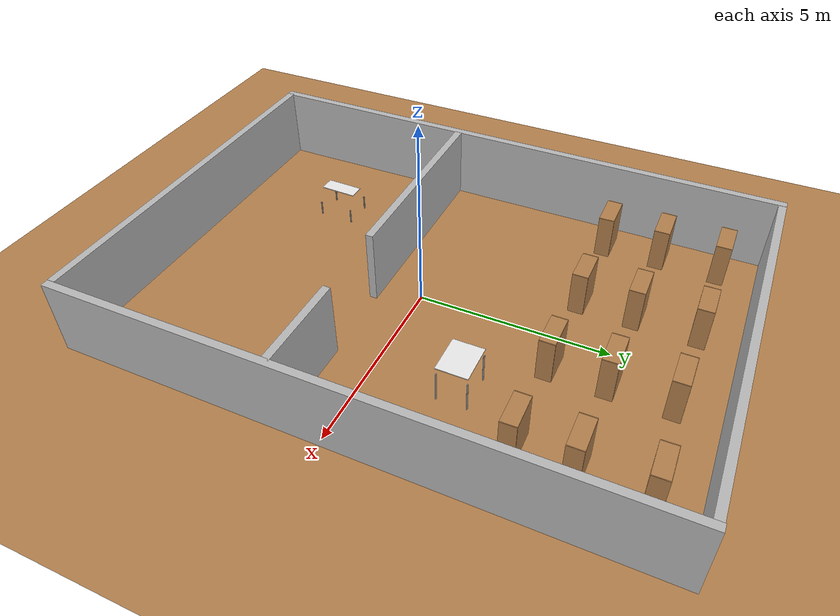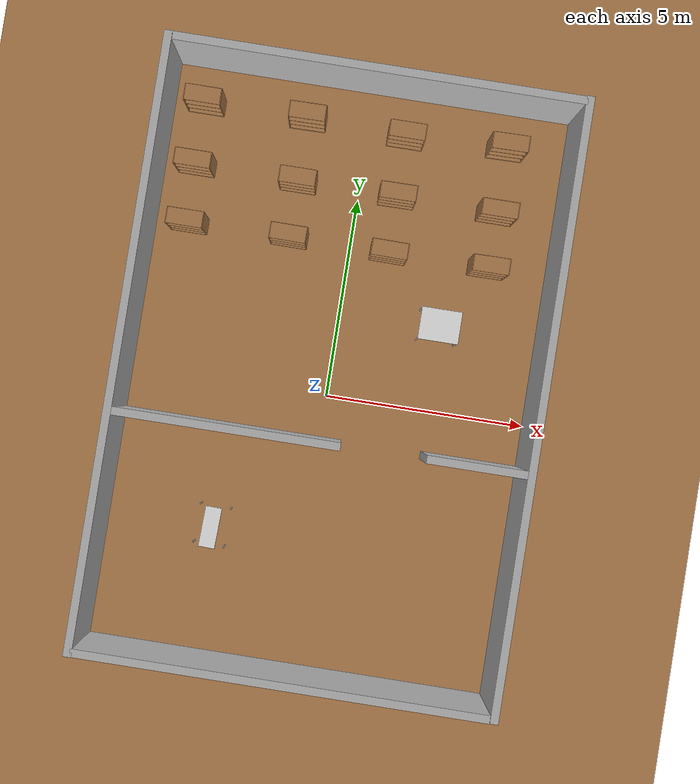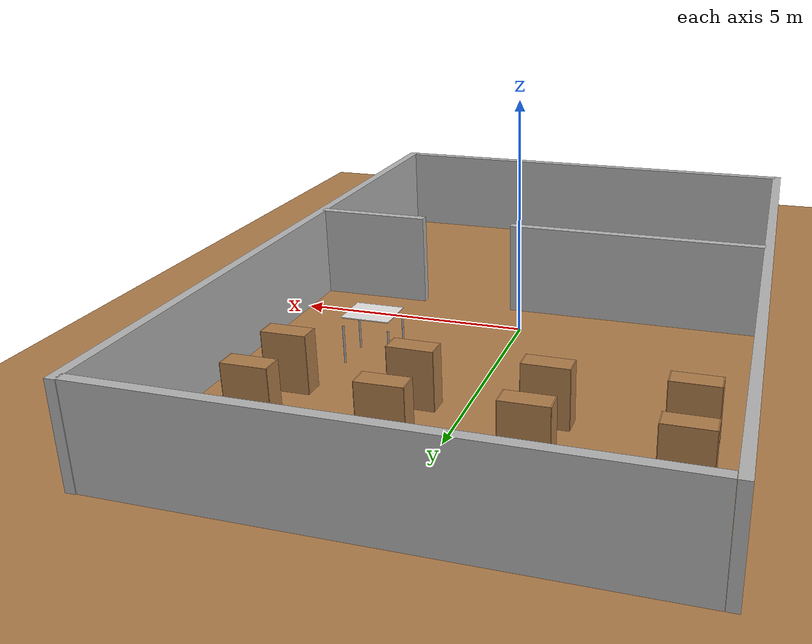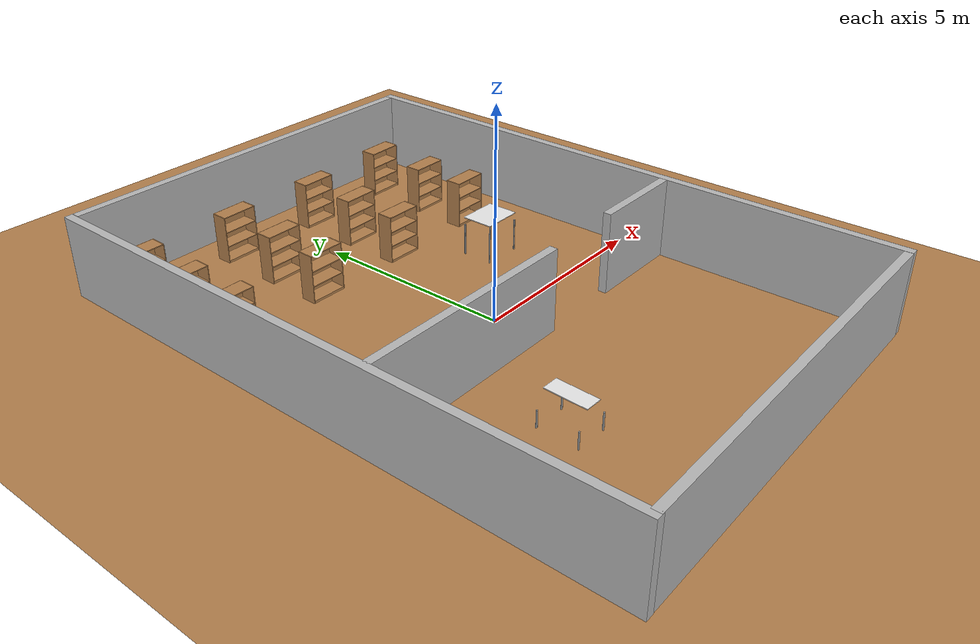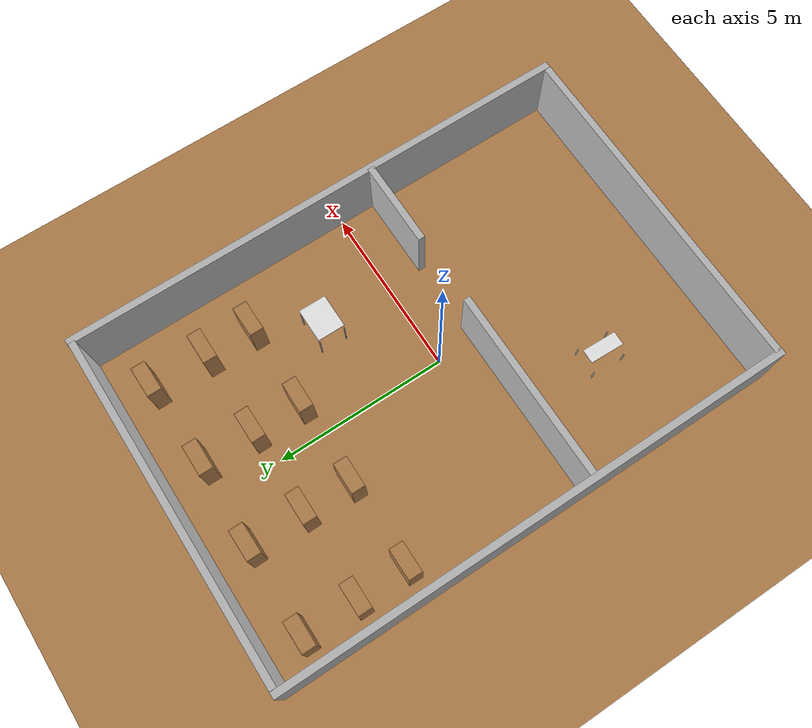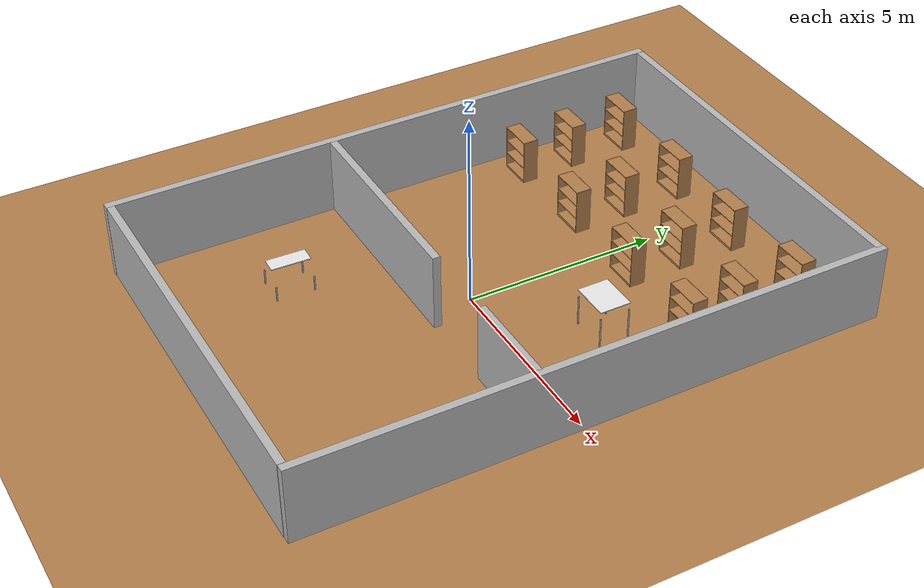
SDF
<sdf version="1.6">
 <world name="default">
  <physics name="default_physics" default="0" type="ode">
   <ode>
    <solver>
     <type>quick</type>
     <iters>20</iters>
     <sor>1</sor>
     <use_dynamic_moi_rescaling>0</use_dynamic_moi_rescaling>
    </solver>
    <constraints>
     <cfm>0</cfm>
     <erp>0.2</erp>
     <contact_max_correcting_vel>100</contact_max_correcting_vel>
     <contact_surface_layer>0</contact_surface_layer>
    </constraints>
   </ode>
   <real_time_update_rate>1000</real_time_update_rate>
   <max_step_size>0.001</max_step_size>
   <real_time_factor>1</real_time_factor>
  </physics>
  <light name="light1" type="directional">
   <pose>-2 0 4 0 -0 0</pose>
   <diffuse>1 1 1 1</diffuse>
   <specular>0.1 0.1 0.1 1</specular>
   <attenuation>
    <range>20</range>
    <constant>0.9</constant>
    <linear>0.01</linear>
    <quadratic>0.001</quadratic>
   </attenuation>
   <direction>0.2 0 -1</direction>
  </light>
  <model name="ground_plane">
   <static>1</static>
   <link name="link">
    <collision name="collision">
     <geometry><plane><normal>0 0 1</normal><size>100 100</size></plane></geometry>
     <surface><friction><ode><mu>100</mu><mu2>50</mu2></ode></friction></surface>
    </collision>
    <visual name="visual">
     <cast_shadows>0</cast_shadows>
     <geometry><plane><normal>0 0 1</normal><size>100 100</size></plane></geometry>
     <material>
      <script><uri>model://wrc_ground_plane/materials/wood.material</uri><name>WRS/WoodFloor</name></script>
     </material>
    </visual>
    <velocity_decay><linear>0</linear><angular>0</angular></velocity_decay>
   </link>
  </model>
  <model name="wall_1_model">
   <pose>-0.020359 -6.90816 1 0 -0 0</pose>
   <static>1</static>
   <link name="wall_1_body">
    <inertial>
     <mass>1</mass>
     <inertia><ixx>1</ixx><ixy>0</ixy><ixz>0</ixz><iyy>1</iyy><iyz>0</iyz><izz>1</izz></inertia>
    </inertial>
    <collision name="collision"><geometry><box><size>10 0.2 2</size></box></geometry></collision>
    <visual name="visual"><geometry><box><size>10 0.2 2</size></box></geometry></visual>
    <velocity_decay><linear>0</linear><angular>0</angular></velocity_decay>
   </link>
  </model>
  <model name="wall_2_model">
   <pose>0.037007 7.88611 1 0 -0 0</pose>
   <static>1</static>
   <link name="wall_2_body">
    <inertial>
     <mass>1</mass>
     <inertia><ixx>1</ixx><ixy>0</ixy><ixz>0</ixz><iyy>1</iyy><iyz>0</iyz><izz>1</izz></inertia>
    </inertial>
    <collision name="collision"><geometry><box><size>10 0.2 2</size></box></geometry></collision>
    <visual name="visual"><geometry><box><size>10 0.2 2</size></box></geometry></visual>
    <velocity_decay><linear>0</linear><angular>0</angular></velocity_decay>
   </link>
  </model>
  <model name="wall_3_model">
   <pose>-5.06937 0.485763 1 0 -0 0</pose>
   <static>1</static>
   <link name="wall_3_body">
    <inertial>
     <mass>1</mass>
     <inertia><ixx>1</ixx><ixy>0</ixy><ixz>0</ixz><iyy>1</iyy><iyz>0</iyz><izz>1</izz></inertia>
    </inertial>
    <collision name="collision"><geometry><box><size>0.2 15 2</size></box></geometry></collision>
    <visual name="visual"><geometry><box><size>0.2 15 2</size></box></geometry></visual>
    <velocity_decay><linear>0</linear><angular>0</angular></velocity_decay>
   </link>
  </model>
  <model name="wall_4_model">
   <pose>5.08627 0.502372 1 0 -0 0</pose>
   <static>1</static>
   <link name="wall_4_body">
    <inertial>
     <mass>1</mass>
     <inertia><ixx>1</ixx><ixy>0</ixy><ixz>0</ixz><iyy>1</iyy><iyz>0</iyz><izz>1</izz></inertia>
    </inertial>
    <collision name="collision"><geometry><box><size>0.2 15 2</size></box></geometry></collision>
    <visual name="visual"><geometry><box><size>0.2 15 2</size></box></geometry></visual>
    <velocity_decay><linear>0</linear><angular>0</angular></velocity_decay>
   </link>
  </model>
  <model name="wall_5_model">
   <pose>-2.23745 -1.14076 1 0 -0 0</pose>
   <static>1</static>
   <link name="wall_5_body">
    <inertial>
     <mass>1</mass>
     <inertia><ixx>1</ixx><ixy>0</ixy><ixz>0</ixz><iyy>1</iyy><iyz>0</iyz><izz>1</izz></inertia>
    </inertial>
    <collision name="collision"><geometry><box><size>5.5 0.2 2</size></box></geometry></collision>
    <visual name="visual"><geometry><box><size>5.5 0.2 2</size></box></geometry></visual>
    <velocity_decay><linear>0</linear><angular>0</angular></velocity_decay>
   </link>
  </model>
  <model name="wall_6_model">
   <pose>3.81487 -1.10956 1 0 -0 0</pose>
   <static>1</static>
   <link name="wall_6_body">
    <inertial>
     <mass>1</mass>
     <inertia><ixx>1</ixx><ixy>0</ixy><ixz>0</ixz><iyy>1</iyy><iyz>0</iyz><izz>1</izz></inertia>
    </inertial>
    <collision name="collision"><geometry><box><size>2.5 0.2 2</size></box></geometry></collision>
    <visual name="visual"><geometry><box><size>2.5 0.2 2</size></box></geometry></visual>
    <velocity_decay><linear>0</linear><angular>0</angular></velocity_decay>
   </link>
  </model>
  <model name="table1">
   <static>1</static>
   <link name="link">
    <collision name="surface">
     <pose>0 0 0.99 0 -0 0</pose>
     <geometry><box><size>1 0.4 0.02</size></box></geometry>
    </collision>
    <visual name="visual1">
     <pose>0 0 0.99 0 -0 0</pose>
     <geometry><box><size>1 0.4 0.02</size></box></geometry>
     <material>
      <script><uri>file://media/materials/scripts/gazebo.material</uri><name>Gazebo/White</name></script>
     </material>
    </visual>
    <collision name="front_left_leg">
     <pose>0.48 0.38 0.4 0 -0 0</pose>
     <geometry><cylinder><radius>0.02</radius><length>0.4</length></cylinder></geometry>
    </collision>
    <visual name="front_left_leg">
     <pose>0.48 0.38 0.4 0 -0 0</pose>
     <geometry><cylinder><radius>0.02</radius><length>0.4</length></cylinder></geometry>
     <material>
      <script><uri>file://media/materials/scripts/gazebo.material</uri><name>Gazebo/Grey</name></script>
     </material>
    </visual>
    <collision name="front_right_leg">
     <pose>0.48 -0.38 0.4 0 -0 0</pose>
     <geometry><cylinder><radius>0.02</radius><length>0.4</length></cylinder></geometry>
    </collision>
    <visual name="front_right_leg">
     <pose>0.48 -0.38 0.4 0 -0 0</pose>
     <geometry><cylinder><radius>0.02</radius><length>0.4</length></cylinder></geometry>
     <material>
      <script><uri>file://media/materials/scripts/gazebo.material</uri><name>Gazebo/Grey</name></script>
     </material>
    </visual>
    <collision name="back_right_leg">
     <pose>-0.48 -0.38 0.4 0 -0 0</pose>
     <geometry><cylinder><radius>0.02</radius><length>0.4</length></cylinder></geometry>
    </collision>
    <visual name="back_right_leg">
     <pose>-0.48 -0.38 0.4 0 -0 0</pose>
     <geometry><cylinder><radius>0.02</radius><length>0.4</length></cylinder></geometry>
     <material>
      <script><uri>file://media/materials/scripts/gazebo.material</uri><name>Gazebo/Grey</name></script>
     </material>
    </visual>
    <collision name="back_left_leg">
     <pose>-0.48 0.38 0.4 0 -0 0</pose>
     <geometry><cylinder><radius>0.02</radius><length>0.4</length></cylinder></geometry>
    </collision>
    <visual name="back_left_leg">
     <pose>-0.48 0.38 0.4 0 -0 0</pose>
     <geometry><cylinder><radius>0.02</radius><length>0.4</length></cylinder></geometry>
     <material>
      <script><uri>file://media/materials/scripts/gazebo.material</uri><name>Gazebo/Grey</name></script>
     </material>
    </visual>
    <velocity_decay><linear>0</linear><angular>0</angular></velocity_decay>
   </link>
   <pose>-2.3094 -3.61673 0 0 0 -1.60531</pose>
  </model>
  <model name="bookshelf_0">
   <static>1</static>
   <link name="link">
    <inertial><mass>1</mass></inertial>
    <collision name="back">
     <pose>0 0.005 0.6 0 -0 0</pose>
     <geometry><box><size>0.9 0.01 1.2</size></box></geometry>
    </collision>
    <visual name="visual1">
     <pose>0 0.005 0.6 0 -0 0</pose>
     <geometry><box><size>0.9 0.01 1.2</size></box></geometry>
     <material>
      <script><uri>file://media/materials/scripts/gazebo.material</uri><name>Gazebo/Wood</name></script>
     </material>
    </visual>
    <collision name="left_side">
     <pose>0.45 -0.195 0.6 0 -0 0</pose>
     <geometry><box><size>0.02 0.4 1.2</size></box></geometry>
    </collision>
    <visual name="visual2">
     <pose>0.45 -0.195 0.6 0 -0 0</pose>
     <geometry><box><size>0.02 0.4 1.2</size></box></geometry>
     <material>
      <script><uri>file://media/materials/scripts/gazebo.material</uri><name>Gazebo/Wood</name></script>
     </material>
    </visual>
    <collision name="right_side">
     <pose>-0.45 -0.195 0.6 0 -0 0</pose>
     <geometry><box><size>0.02 0.4 1.2</size></box></geometry>
    </collision>
    <visual name="visual3">
     <pose>-0.45 -0.195 0.6 0 -0 0</pose>
     <geometry><box><size>0.02 0.4 1.2</size></box></geometry>
     <material>
      <script><uri>file://media/materials/scripts/gazebo.material</uri><name>Gazebo/Wood</name></script>
     </material>
    </visual>
    <collision name="bottom">
     <pose>0 -0.195 0.03 0 -0 0</pose>
     <geometry><box><size>0.88 0.4 0.06</size></box></geometry>
    </collision>
    <visual name="visual4">
     <pose>0 -0.195 0.03 0 -0 0</pose>
     <geometry><box><size>0.88 0.4 0.06</size></box></geometry>
     <material>
      <script><uri>file://media/materials/scripts/gazebo.material</uri><name>Gazebo/Wood</name></script>
     </material>
    </visual>
    <collision name="top">
     <pose>0 -0.195 1.19 0 -0 0</pose>
     <geometry><box><size>0.88 0.4 0.02</size></box></geometry>
    </collision>
    <visual name="visual5">
     <pose>0 -0.195 1.19 0 -0 0</pose>
     <geometry><box><size>0.88 0.4 0.02</size></box></geometry>
     <material>
      <script><uri>file://media/materials/scripts/gazebo.material</uri><name>Gazebo/Wood</name></script>
     </material>
    </visual>
    <collision name="low_shelf">
     <pose>0 -0.195 0.43 0 -0 0</pose>
     <geometry><box><size>0.88 0.4 0.02</size></box></geometry>
    </collision>
    <visual name="visual6">
     <pose>0 -0.195 0.43 0 -0 0</pose>
     <geometry><box><size>0.88 0.4 0.02</size></box></geometry>
     <material>
      <script><uri>file://media/materials/scripts/gazebo.material</uri><name>Gazebo/Wood</name></script>
     </material>
    </visual>
    <collision name="high_shelf">
     <pose>0 -0.195 0.8 0 -0 0</pose>
     <geometry><box><size>0.88 0.4 0.02</size></box></geometry>
    </collision>
    <visual name="visual7">
     <pose>0 -0.195 0.8 0 -0 0</pose>
     <geometry><box><size>0.88 0.4 0.02</size></box></geometry>
     <material>
      <script><uri>file://media/materials/scripts/gazebo.material</uri><name>Gazebo/Wood</name></script>
     </material>
    </visual>
   </link>
   <pose>-1.55436 6.99944 0 0 -0 0.01062</pose>
  </model>
  <model name="bookshelf_1">
   <static>1</static>
   <link name="link">
    <inertial><mass>1</mass></inertial>
    <collision name="back">
     <pose>0 0.005 0.6 0 -0 0</pose>
     <geometry><box><size>0.9 0.01 1.2</size></box></geometry>
    </collision>
    <visual name="visual1">
     <pose>0 0.005 0.6 0 -0 0</pose>
     <geometry><box><size>0.9 0.01 1.2</size></box></geometry>
     <material>
      <script><uri>file://media/materials/scripts/gazebo.material</uri><name>Gazebo/Wood</name></script>
     </material>
    </visual>
    <collision name="left_side">
     <pose>0.45 -0.195 0.6 0 -0 0</pose>
     <geometry><box><size>0.02 0.4 1.2</size></box></geometry>
    </collision>
    <visual name="visual2">
     <pose>0.45 -0.195 0.6 0 -0 0</pose>
     <geometry><box><size>0.02 0.4 1.2</size></box></geometry>
     <material>
      <script><uri>file://media/materials/scripts/gazebo.material</uri><name>Gazebo/Wood</name></script>
     </material>
    </visual>
    <collision name="right_side">
     <pose>-0.45 -0.195 0.6 0 -0 0</pose>
     <geometry><box><size>0.02 0.4 1.2</size></box></geometry>
    </collision>
    <visual name="visual3">
     <pose>-0.45 -0.195 0.6 0 -0 0</pose>
     <geometry><box><size>0.02 0.4 1.2</size></box></geometry>
     <material>
      <script><uri>file://media/materials/scripts/gazebo.material</uri><name>Gazebo/Wood</name></script>
     </material>
    </visual>
    <collision name="bottom">
     <pose>0 -0.195 0.03 0 -0 0</pose>
     <geometry><box><size>0.88 0.4 0.06</size></box></geometry>
    </collision>
    <visual name="visual4">
     <pose>0 -0.195 0.03 0 -0 0</pose>
     <geometry><box><size>0.88 0.4 0.06</size></box></geometry>
     <material>
      <script><uri>file://media/materials/scripts/gazebo.material</uri><name>Gazebo/Wood</name></script>
     </material>
    </visual>
    <collision name="top">
     <pose>0 -0.195 1.19 0 -0 0</pose>
     <geometry><box><size>0.88 0.4 0.02</size></box></geometry>
    </collision>
    <visual name="visual5">
     <pose>0 -0.195 1.19 0 -0 0</pose>
     <geometry><box><size>0.88 0.4 0.02</size></box></geometry>
     <material>
      <script><uri>file://media/materials/scripts/gazebo.material</uri><name>Gazebo/Wood</name></script>
     </material>
    </visual>
    <collision name="low_shelf">
     <pose>0 -0.195 0.43 0 -0 0</pose>
     <geometry><box><size>0.88 0.4 0.02</size></box></geometry>
    </collision>
    <visual name="visual6">
     <pose>0 -0.195 0.43 0 -0 0</pose>
     <geometry><box><size>0.88 0.4 0.02</size></box></geometry>
     <material>
      <script><uri>file://media/materials/scripts/gazebo.material</uri><name>Gazebo/Wood</name></script>
     </material>
    </visual>
    <collision name="high_shelf">
     <pose>0 -0.195 0.8 0 -0 0</pose>
     <geometry><box><size>0.88 0.4 0.02</size></box></geometry>
    </collision>
    <visual name="visual7">
     <pose>0 -0.195 0.8 0 -0 0</pose>
     <geometry><box><size>0.88 0.4 0.02</size></box></geometry>
     <material>
      <script><uri>file://media/materials/scripts/gazebo.material</uri><name>Gazebo/Wood</name></script>
     </material>
    </visual>
   </link>
   <pose>-1.54553 5.39127 0 0 -0 0.001446</pose>
  </model>
  <model name="bookshelf_2">
   <static>1</static>
   <link name="link">
    <inertial><mass>1</mass></inertial>
    <collision name="back">
     <pose>0 0.005 0.6 0 -0 0</pose>
     <geometry><box><size>0.9 0.01 1.2</size></box></geometry>
    </collision>
    <visual name="visual1">
     <pose>0 0.005 0.6 0 -0 0</pose>
     <geometry><box><size>0.9 0.01 1.2</size></box></geometry>
     <material>
      <script><uri>file://media/materials/scripts/gazebo.material</uri><name>Gazebo/Wood</name></script>
     </material>
    </visual>
    <collision name="left_side">
     <pose>0.45 -0.195 0.6 0 -0 0</pose>
     <geometry><box><size>0.02 0.4 1.2</size></box></geometry>
    </collision>
    <visual name="visual2">
     <pose>0.45 -0.195 0.6 0 -0 0</pose>
     <geometry><box><size>0.02 0.4 1.2</size></box></geometry>
     <material>
      <script><uri>file://media/materials/scripts/gazebo.material</uri><name>Gazebo/Wood</name></script>
     </material>
    </visual>
    <collision name="right_side">
     <pose>-0.45 -0.195 0.6 0 -0 0</pose>
     <geometry><box><size>0.02 0.4 1.2</size></box></geometry>
    </collision>
    <visual name="visual3">
     <pose>-0.45 -0.195 0.6 0 -0 0</pose>
     <geometry><box><size>0.02 0.4 1.2</size></box></geometry>
     <material>
      <script><uri>file://media/materials/scripts/gazebo.material</uri><name>Gazebo/Wood</name></script>
     </material>
    </visual>
    <collision name="bottom">
     <pose>0 -0.195 0.03 0 -0 0</pose>
     <geometry><box><size>0.88 0.4 0.06</size></box></geometry>
    </collision>
    <visual name="visual4">
     <pose>0 -0.195 0.03 0 -0 0</pose>
     <geometry><box><size>0.88 0.4 0.06</size></box></geometry>
     <material>
      <script><uri>file://media/materials/scripts/gazebo.material</uri><name>Gazebo/Wood</name></script>
     </material>
    </visual>
    <collision name="top">
     <pose>0 -0.195 1.19 0 -0 0</pose>
     <geometry><box><size>0.88 0.4 0.02</size></box></geometry>
    </collision>
    <visual name="visual5">
     <pose>0 -0.195 1.19 0 -0 0</pose>
     <geometry><box><size>0.88 0.4 0.02</size></box></geometry>
     <material>
      <script><uri>file://media/materials/scripts/gazebo.material</uri><name>Gazebo/Wood</name></script>
     </material>
    </visual>
    <collision name="low_shelf">
     <pose>0 -0.195 0.43 0 -0 0</pose>
     <geometry><box><size>0.88 0.4 0.02</size></box></geometry>
    </collision>
    <visual name="visual6">
     <pose>0 -0.195 0.43 0 -0 0</pose>
     <geometry><box><size>0.88 0.4 0.02</size></box></geometry>
     <material>
      <script><uri>file://media/materials/scripts/gazebo.material</uri><name>Gazebo/Wood</name></script>
     </material>
    </visual>
    <collision name="high_shelf">
     <pose>0 -0.195 0.8 0 -0 0</pose>
     <geometry><box><size>0.88 0.4 0.02</size></box></geometry>
    </collision>
    <visual name="visual7">
     <pose>0 -0.195 0.8 0 -0 0</pose>
     <geometry><box><size>0.88 0.4 0.02</size></box></geometry>
     <material>
      <script><uri>file://media/materials/scripts/gazebo.material</uri><name>Gazebo/Wood</name></script>
     </material>
    </visual>
   </link>
   <pose>-1.55188 3.98364 0 0 0 -0.00976</pose>
  </model>
  <model name="bookshelf_3">
   <static>1</static>
   <link name="link">
    <inertial><mass>1</mass></inertial>
    <collision name="back">
     <pose>0 0.005 0.6 0 -0 0</pose>
     <geometry><box><size>0.9 0.01 1.2</size></box></geometry>
    </collision>
    <visual name="visual1">
     <pose>0 0.005 0.6 0 -0 0</pose>
     <geometry><box><size>0.9 0.01 1.2</size></box></geometry>
     <material>
      <script><uri>file://media/materials/scripts/gazebo.material</uri><name>Gazebo/Wood</name></script>
     </material>
    </visual>
    <collision name="left_side">
     <pose>0.45 -0.195 0.6 0 -0 0</pose>
     <geometry><box><size>0.02 0.4 1.2</size></box></geometry>
    </collision>
    <visual name="visual2">
     <pose>0.45 -0.195 0.6 0 -0 0</pose>
     <geometry><box><size>0.02 0.4 1.2</size></box></geometry>
     <material>
      <script><uri>file://media/materials/scripts/gazebo.material</uri><name>Gazebo/Wood</name></script>
     </material>
    </visual>
    <collision name="right_side">
     <pose>-0.45 -0.195 0.6 0 -0 0</pose>
     <geometry><box><size>0.02 0.4 1.2</size></box></geometry>
    </collision>
    <visual name="visual3">
     <pose>-0.45 -0.195 0.6 0 -0 0</pose>
     <geometry><box><size>0.02 0.4 1.2</size></box></geometry>
     <material>
      <script><uri>file://media/materials/scripts/gazebo.material</uri><name>Gazebo/Wood</name></script>
     </material>
    </visual>
    <collision name="bottom">
     <pose>0 -0.195 0.03 0 -0 0</pose>
     <geometry><box><size>0.88 0.4 0.06</size></box></geometry>
    </collision>
    <visual name="visual4">
     <pose>0 -0.195 0.03 0 -0 0</pose>
     <geometry><box><size>0.88 0.4 0.06</size></box></geometry>
     <material>
      <script><uri>file://media/materials/scripts/gazebo.material</uri><name>Gazebo/Wood</name></script>
     </material>
    </visual>
    <collision name="top">
     <pose>0 -0.195 1.19 0 -0 0</pose>
     <geometry><box><size>0.88 0.4 0.02</size></box></geometry>
    </collision>
    <visual name="visual5">
     <pose>0 -0.195 1.19 0 -0 0</pose>
     <geometry><box><size>0.88 0.4 0.02</size></box></geometry>
     <material>
      <script><uri>file://media/materials/scripts/gazebo.material</uri><name>Gazebo/Wood</name></script>
     </material>
    </visual>
    <collision name="low_shelf">
     <pose>0 -0.195 0.43 0 -0 0</pose>
     <geometry><box><size>0.88 0.4 0.02</size></box></geometry>
    </collision>
    <visual name="visual6">
     <pose>0 -0.195 0.43 0 -0 0</pose>
     <geometry><box><size>0.88 0.4 0.02</size></box></geometry>
     <material>
      <script><uri>file://media/materials/scripts/gazebo.material</uri><name>Gazebo/Wood</name></script>
     </material>
    </visual>
    <collision name="high_shelf">
     <pose>0 -0.195 0.8 0 -0 0</pose>
     <geometry><box><size>0.88 0.4 0.02</size></box></geometry>
    </collision>
    <visual name="visual7">
     <pose>0 -0.195 0.8 0 -0 0</pose>
     <geometry><box><size>0.88 0.4 0.02</size></box></geometry>
     <material>
      <script><uri>file://media/materials/scripts/gazebo.material</uri><name>Gazebo/Wood</name></script>
     </material>
    </visual>
   </link>
   <pose>0.944011 6.92334 0 0 0 -0.000913</pose>
  </model>
  <model name="bookshelf_4">
   <static>1</static>
   <link name="link">
    <inertial><mass>1</mass></inertial>
    <collision name="back">
     <pose>0 0.005 0.6 0 -0 0</pose>
     <geometry><box><size>0.9 0.01 1.2</size></box></geometry>
    </collision>
    <visual name="visual1">
     <pose>0 0.005 0.6 0 -0 0</pose>
     <geometry><box><size>0.9 0.01 1.2</size></box></geometry>
     <material>
      <script><uri>file://media/materials/scripts/gazebo.material</uri><name>Gazebo/Wood</name></script>
     </material>
    </visual>
    <collision name="left_side">
     <pose>0.45 -0.195 0.6 0 -0 0</pose>
     <geometry><box><size>0.02 0.4 1.2</size></box></geometry>
    </collision>
    <visual name="visual2">
     <pose>0.45 -0.195 0.6 0 -0 0</pose>
     <geometry><box><size>0.02 0.4 1.2</size></box></geometry>
     <material>
      <script><uri>file://media/materials/scripts/gazebo.material</uri><name>Gazebo/Wood</name></script>
     </material>
    </visual>
    <collision name="right_side">
     <pose>-0.45 -0.195 0.6 0 -0 0</pose>
     <geometry><box><size>0.02 0.4 1.2</size></box></geometry>
    </collision>
    <visual name="visual3">
     <pose>-0.45 -0.195 0.6 0 -0 0</pose>
     <geometry><box><size>0.02 0.4 1.2</size></box></geometry>
     <material>
      <script><uri>file://media/materials/scripts/gazebo.material</uri><name>Gazebo/Wood</name></script>
     </material>
    </visual>
    <collision name="bottom">
     <pose>0 -0.195 0.03 0 -0 0</pose>
     <geometry><box><size>0.88 0.4 0.06</size></box></geometry>
    </collision>
    <visual name="visual4">
     <pose>0 -0.195 0.03 0 -0 0</pose>
     <geometry><box><size>0.88 0.4 0.06</size></box></geometry>
     <material>
      <script><uri>file://media/materials/scripts/gazebo.material</uri><name>Gazebo/Wood</name></script>
     </material>
    </visual>
    <collision name="top">
     <pose>0 -0.195 1.19 0 -0 0</pose>
     <geometry><box><size>0.88 0.4 0.02</size></box></geometry>
    </collision>
    <visual name="visual5">
     <pose>0 -0.195 1.19 0 -0 0</pose>
     <geometry><box><size>0.88 0.4 0.02</size></box></geometry>
     <material>
      <script><uri>file://media/materials/scripts/gazebo.material</uri><name>Gazebo/Wood</name></script>
     </material>
    </visual>
    <collision name="low_shelf">
     <pose>0 -0.195 0.43 0 -0 0</pose>
     <geometry><box><size>0.88 0.4 0.02</size></box></geometry>
    </collision>
    <visual name="visual6">
     <pose>0 -0.195 0.43 0 -0 0</pose>
     <geometry><box><size>0.88 0.4 0.02</size></box></geometry>
     <material>
      <script><uri>file://media/materials/scripts/gazebo.material</uri><name>Gazebo/Wood</name></script>
     </material>
    </visual>
    <collision name="high_shelf">
     <pose>0 -0.195 0.8 0 -0 0</pose>
     <geometry><box><size>0.88 0.4 0.02</size></box></geometry>
    </collision>
    <visual name="visual7">
     <pose>0 -0.195 0.8 0 -0 0</pose>
     <geometry><box><size>0.88 0.4 0.02</size></box></geometry>
     <material>
      <script><uri>file://media/materials/scripts/gazebo.material</uri><name>Gazebo/Wood</name></script>
     </material>
    </visual>
   </link>
   <pose>0.950185 5.40001 0 0 -0 0.007683</pose>
  </model>
  <model name="bookshelf_5">
   <static>1</static>
   <link name="link">
    <inertial><mass>1</mass></inertial>
    <collision name="back">
     <pose>0 0.005 0.6 0 -0 0</pose>
     <geometry><box><size>0.9 0.01 1.2</size></box></geometry>
    </collision>
    <visual name="visual1">
     <pose>0 0.005 0.6 0 -0 0</pose>
     <geometry><box><size>0.9 0.01 1.2</size></box></geometry>
     <material>
      <script><uri>file://media/materials/scripts/gazebo.material</uri><name>Gazebo/Wood</name></script>
     </material>
    </visual>
    <collision name="left_side">
     <pose>0.45 -0.195 0.6 0 -0 0</pose>
     <geometry><box><size>0.02 0.4 1.2</size></box></geometry>
    </collision>
    <visual name="visual2">
     <pose>0.45 -0.195 0.6 0 -0 0</pose>
     <geometry><box><size>0.02 0.4 1.2</size></box></geometry>
     <material>
      <script><uri>file://media/materials/scripts/gazebo.material</uri><name>Gazebo/Wood</name></script>
     </material>
    </visual>
    <collision name="right_side">
     <pose>-0.45 -0.195 0.6 0 -0 0</pose>
     <geometry><box><size>0.02 0.4 1.2</size></box></geometry>
    </collision>
    <visual name="visual3">
     <pose>-0.45 -0.195 0.6 0 -0 0</pose>
     <geometry><box><size>0.02 0.4 1.2</size></box></geometry>
     <material>
      <script><uri>file://media/materials/scripts/gazebo.material</uri><name>Gazebo/Wood</name></script>
     </material>
    </visual>
    <collision name="bottom">
     <pose>0 -0.195 0.03 0 -0 0</pose>
     <geometry><box><size>0.88 0.4 0.06</size></box></geometry>
    </collision>
    <visual name="visual4">
     <pose>0 -0.195 0.03 0 -0 0</pose>
     <geometry><box><size>0.88 0.4 0.06</size></box></geometry>
     <material>
      <script><uri>file://media/materials/scripts/gazebo.material</uri><name>Gazebo/Wood</name></script>
     </material>
    </visual>
    <collision name="top">
     <pose>0 -0.195 1.19 0 -0 0</pose>
     <geometry><box><size>0.88 0.4 0.02</size></box></geometry>
    </collision>
    <visual name="visual5">
     <pose>0 -0.195 1.19 0 -0 0</pose>
     <geometry><box><size>0.88 0.4 0.02</size></box></geometry>
     <material>
      <script><uri>file://media/materials/scripts/gazebo.material</uri><name>Gazebo/Wood</name></script>
     </material>
    </visual>
    <collision name="low_shelf">
     <pose>0 -0.195 0.43 0 -0 0</pose>
     <geometry><box><size>0.88 0.4 0.02</size></box></geometry>
    </collision>
    <visual name="visual6">
     <pose>0 -0.195 0.43 0 -0 0</pose>
     <geometry><box><size>0.88 0.4 0.02</size></box></geometry>
     <material>
      <script><uri>file://media/materials/scripts/gazebo.material</uri><name>Gazebo/Wood</name></script>
     </material>
    </visual>
    <collision name="high_shelf">
     <pose>0 -0.195 0.8 0 -0 0</pose>
     <geometry><box><size>0.88 0.4 0.02</size></box></geometry>
    </collision>
    <visual name="visual7">
     <pose>0 -0.195 0.8 0 -0 0</pose>
     <geometry><box><size>0.88 0.4 0.02</size></box></geometry>
     <material>
      <script><uri>file://media/materials/scripts/gazebo.material</uri><name>Gazebo/Wood</name></script>
     </material>
    </visual>
   </link>
   <pose>0.964681 3.97311 0 0 0 -0.011642</pose>
  </model>
  <model name="bookshelf_6">
   <static>1</static>
   <link name="link">
    <inertial><mass>1</mass></inertial>
    <collision name="back">
     <pose>0 0.005 0.6 0 -0 0</pose>
     <geometry><box><size>0.9 0.01 1.2</size></box></geometry>
    </collision>
    <visual name="visual1">
     <pose>0 0.005 0.6 0 -0 0</pose>
     <geometry><box><size>0.9 0.01 1.2</size></box></geometry>
     <material>
      <script><uri>file://media/materials/scripts/gazebo.material</uri><name>Gazebo/Wood</name></script>
     </material>
    </visual>
    <collision name="left_side">
     <pose>0.45 -0.195 0.6 0 -0 0</pose>
     <geometry><box><size>0.02 0.4 1.2</size></box></geometry>
    </collision>
    <visual name="visual2">
     <pose>0.45 -0.195 0.6 0 -0 0</pose>
     <geometry><box><size>0.02 0.4 1.2</size></box></geometry>
     <material>
      <script><uri>file://media/materials/scripts/gazebo.material</uri><name>Gazebo/Wood</name></script>
     </material>
    </visual>
    <collision name="right_side">
     <pose>-0.45 -0.195 0.6 0 -0 0</pose>
     <geometry><box><size>0.02 0.4 1.2</size></box></geometry>
    </collision>
    <visual name="visual3">
     <pose>-0.45 -0.195 0.6 0 -0 0</pose>
     <geometry><box><size>0.02 0.4 1.2</size></box></geometry>
     <material>
      <script><uri>file://media/materials/scripts/gazebo.material</uri><name>Gazebo/Wood</name></script>
     </material>
    </visual>
    <collision name="bottom">
     <pose>0 -0.195 0.03 0 -0 0</pose>
     <geometry><box><size>0.88 0.4 0.06</size></box></geometry>
    </collision>
    <visual name="visual4">
     <pose>0 -0.195 0.03 0 -0 0</pose>
     <geometry><box><size>0.88 0.4 0.06</size></box></geometry>
     <material>
      <script><uri>file://media/materials/scripts/gazebo.material</uri><name>Gazebo/Wood</name></script>
     </material>
    </visual>
    <collision name="top">
     <pose>0 -0.195 1.19 0 -0 0</pose>
     <geometry><box><size>0.88 0.4 0.02</size></box></geometry>
    </collision>
    <visual name="visual5">
     <pose>0 -0.195 1.19 0 -0 0</pose>
     <geometry><box><size>0.88 0.4 0.02</size></box></geometry>
     <material>
      <script><uri>file://media/materials/scripts/gazebo.material</uri><name>Gazebo/Wood</name></script>
     </material>
    </visual>
    <collision name="low_shelf">
     <pose>0 -0.195 0.43 0 -0 0</pose>
     <geometry><box><size>0.88 0.4 0.02</size></box></geometry>
    </collision>
    <visual name="visual6">
     <pose>0 -0.195 0.43 0 -0 0</pose>
     <geometry><box><size>0.88 0.4 0.02</size></box></geometry>
     <material>
      <script><uri>file://media/materials/scripts/gazebo.material</uri><name>Gazebo/Wood</name></script>
     </material>
    </visual>
    <collision name="high_shelf">
     <pose>0 -0.195 0.8 0 -0 0</pose>
     <geometry><box><size>0.88 0.4 0.02</size></box></geometry>
    </collision>
    <visual name="visual7">
     <pose>0 -0.195 0.8 0 -0 0</pose>
     <geometry><box><size>0.88 0.4 0.02</size></box></geometry>
     <material>
      <script><uri>file://media/materials/scripts/gazebo.material</uri><name>Gazebo/Wood</name></script>
     </material>
    </visual>
   </link>
   <pose>3.47653 7.02407 0 0 -0 0.013346</pose>
  </model>
  <model name="bookshelf_7">
   <static>1</static>
   <link name="link">
    <inertial><mass>1</mass></inertial>
    <collision name="back">
     <pose>0 0.005 0.6 0 -0 0</pose>
     <geometry><box><size>0.9 0.01 1.2</size></box></geometry>
    </collision>
    <visual name="visual1">
     <pose>0 0.005 0.6 0 -0 0</pose>
     <geometry><box><size>0.9 0.01 1.2</size></box></geometry>
     <material>
      <script><uri>file://media/materials/scripts/gazebo.material</uri><name>Gazebo/Wood</name></script>
     </material>
    </visual>
    <collision name="left_side">
     <pose>0.45 -0.195 0.6 0 -0 0</pose>
     <geometry><box><size>0.02 0.4 1.2</size></box></geometry>
    </collision>
    <visual name="visual2">
     <pose>0.45 -0.195 0.6 0 -0 0</pose>
     <geometry><box><size>0.02 0.4 1.2</size></box></geometry>
     <material>
      <script><uri>file://media/materials/scripts/gazebo.material</uri><name>Gazebo/Wood</name></script>
     </material>
    </visual>
    <collision name="right_side">
     <pose>-0.45 -0.195 0.6 0 -0 0</pose>
     <geometry><box><size>0.02 0.4 1.2</size></box></geometry>
    </collision>
    <visual name="visual3">
     <pose>-0.45 -0.195 0.6 0 -0 0</pose>
     <geometry><box><size>0.02 0.4 1.2</size></box></geometry>
     <material>
      <script><uri>file://media/materials/scripts/gazebo.material</uri><name>Gazebo/Wood</name></script>
     </material>
    </visual>
    <collision name="bottom">
     <pose>0 -0.195 0.03 0 -0 0</pose>
     <geometry><box><size>0.88 0.4 0.06</size></box></geometry>
    </collision>
    <visual name="visual4">
     <pose>0 -0.195 0.03 0 -0 0</pose>
     <geometry><box><size>0.88 0.4 0.06</size></box></geometry>
     <material>
      <script><uri>file://media/materials/scripts/gazebo.material</uri><name>Gazebo/Wood</name></script>
     </material>
    </visual>
    <collision name="top">
     <pose>0 -0.195 1.19 0 -0 0</pose>
     <geometry><box><size>0.88 0.4 0.02</size></box></geometry>
    </collision>
    <visual name="visual5">
     <pose>0 -0.195 1.19 0 -0 0</pose>
     <geometry><box><size>0.88 0.4 0.02</size></box></geometry>
     <material>
      <script><uri>file://media/materials/scripts/gazebo.material</uri><name>Gazebo/Wood</name></script>
     </material>
    </visual>
    <collision name="low_shelf">
     <pose>0 -0.195 0.43 0 -0 0</pose>
     <geometry><box><size>0.88 0.4 0.02</size></box></geometry>
    </collision>
    <visual name="visual6">
     <pose>0 -0.195 0.43 0 -0 0</pose>
     <geometry><box><size>0.88 0.4 0.02</size></box></geometry>
     <material>
      <script><uri>file://media/materials/scripts/gazebo.material</uri><name>Gazebo/Wood</name></script>
     </material>
    </visual>
    <collision name="high_shelf">
     <pose>0 -0.195 0.8 0 -0 0</pose>
     <geometry><box><size>0.88 0.4 0.02</size></box></geometry>
    </collision>
    <visual name="visual7">
     <pose>0 -0.195 0.8 0 -0 0</pose>
     <geometry><box><size>0.88 0.4 0.02</size></box></geometry>
     <material>
      <script><uri>file://media/materials/scripts/gazebo.material</uri><name>Gazebo/Wood</name></script>
     </material>
    </visual>
   </link>
   <pose>3.47594 5.37789 0 0 0 -0.002779</pose>
  </model>
  <model name="bookshelf_8">
   <static>1</static>
   <link name="link">
    <inertial><mass>1</mass></inertial>
    <collision name="back">
     <pose>0 0.005 0.6 0 -0 0</pose>
     <geometry><box><size>0.9 0.01 1.2</size></box></geometry>
    </collision>
    <visual name="visual1">
     <pose>0 0.005 0.6 0 -0 0</pose>
     <geometry><box><size>0.9 0.01 1.2</size></box></geometry>
     <material>
      <script><uri>file://media/materials/scripts/gazebo.material</uri><name>Gazebo/Wood</name></script>
     </material>
    </visual>
    <collision name="left_side">
     <pose>0.45 -0.195 0.6 0 -0 0</pose>
     <geometry><box><size>0.02 0.4 1.2</size></box></geometry>
    </collision>
    <visual name="visual2">
     <pose>0.45 -0.195 0.6 0 -0 0</pose>
     <geometry><box><size>0.02 0.4 1.2</size></box></geometry>
     <material>
      <script><uri>file://media/materials/scripts/gazebo.material</uri><name>Gazebo/Wood</name></script>
     </material>
    </visual>
    <collision name="right_side">
     <pose>-0.45 -0.195 0.6 0 -0 0</pose>
     <geometry><box><size>0.02 0.4 1.2</size></box></geometry>
    </collision>
    <visual name="visual3">
     <pose>-0.45 -0.195 0.6 0 -0 0</pose>
     <geometry><box><size>0.02 0.4 1.2</size></box></geometry>
     <material>
      <script><uri>file://media/materials/scripts/gazebo.material</uri><name>Gazebo/Wood</name></script>
     </material>
    </visual>
    <collision name="bottom">
     <pose>0 -0.195 0.03 0 -0 0</pose>
     <geometry><box><size>0.88 0.4 0.06</size></box></geometry>
    </collision>
    <visual name="visual4">
     <pose>0 -0.195 0.03 0 -0 0</pose>
     <geometry><box><size>0.88 0.4 0.06</size></box></geometry>
     <material>
      <script><uri>file://media/materials/scripts/gazebo.material</uri><name>Gazebo/Wood</name></script>
     </material>
    </visual>
    <collision name="top">
     <pose>0 -0.195 1.19 0 -0 0</pose>
     <geometry><box><size>0.88 0.4 0.02</size></box></geometry>
    </collision>
    <visual name="visual5">
     <pose>0 -0.195 1.19 0 -0 0</pose>
     <geometry><box><size>0.88 0.4 0.02</size></box></geometry>
     <material>
      <script><uri>file://media/materials/scripts/gazebo.material</uri><name>Gazebo/Wood</name></script>
     </material>
    </visual>
    <collision name="low_shelf">
     <pose>0 -0.195 0.43 0 -0 0</pose>
     <geometry><box><size>0.88 0.4 0.02</size></box></geometry>
    </collision>
    <visual name="visual6">
     <pose>0 -0.195 0.43 0 -0 0</pose>
     <geometry><box><size>0.88 0.4 0.02</size></box></geometry>
     <material>
      <script><uri>file://media/materials/scripts/gazebo.material</uri><name>Gazebo/Wood</name></script>
     </material>
    </visual>
    <collision name="high_shelf">
     <pose>0 -0.195 0.8 0 -0 0</pose>
     <geometry><box><size>0.88 0.4 0.02</size></box></geometry>
    </collision>
    <visual name="visual7">
     <pose>0 -0.195 0.8 0 -0 0</pose>
     <geometry><box><size>0.88 0.4 0.02</size></box></geometry>
     <material>
      <script><uri>file://media/materials/scripts/gazebo.material</uri><name>Gazebo/Wood</name></script>
     </material>
    </visual>
   </link>
   <pose>3.46914 3.98412 0 0 -0 0.005541</pose>
  </model>
  <gravity>0 0 -9.81</gravity>
  <magnetic_field>6e-06 2.3e-05 -4.2e-05</magnetic_field>
  <atmosphere type="adiabatic"/>
  <scene><ambient>0.4 0.4 0.4 1</ambient><background>0.7 0.7 0.7 1</background><shadows>1</shadows></scene>
  <spherical_coordinates>
   <surface_model>EARTH_WGS84</surface_model>
   <latitude_deg>0</latitude_deg>
   <longitude_deg>0</longitude_deg>
   <elevation>0</elevation>
   <heading_deg>0</heading_deg>
  </spherical_coordinates>
  <model name="bookshelf">
   <static>1</static>
   <link name="link">
    <inertial><mass>1</mass></inertial>
    <collision name="back">
     <pose>0 0.005 0.6 0 -0 0</pose>
     <geometry><box><size>0.9 0.01 1.2</size></box></geometry>
    </collision>
    <visual name="visual1">
     <pose>0 0.005 0.6 0 -0 0</pose>
     <geometry><box><size>0.9 0.01 1.2</size></box></geometry>
     <material>
      <script><uri>file://media/materials/scripts/gazebo.material</uri><name>Gazebo/Wood</name></script>
     </material>
    </visual>
    <collision name="left_side">
     <pose>0.45 -0.195 0.6 0 -0 0</pose>
     <geometry><box><size>0.02 0.4 1.2</size></box></geometry>
    </collision>
    <visual name="visual2">
     <pose>0.45 -0.195 0.6 0 -0 0</pose>
     <geometry><box><size>0.02 0.4 1.2</size></box></geometry>
     <material>
      <script><uri>file://media/materials/scripts/gazebo.material</uri><name>Gazebo/Wood</name></script>
     </material>
    </visual>
    <collision name="right_side">
     <pose>-0.45 -0.195 0.6 0 -0 0</pose>
     <geometry><box><size>0.02 0.4 1.2</size></box></geometry>
    </collision>
    <visual name="visual3">
     <pose>-0.45 -0.195 0.6 0 -0 0</pose>
     <geometry><box><size>0.02 0.4 1.2</size></box></geometry>
     <material>
      <script><uri>file://media/materials/scripts/gazebo.material</uri><name>Gazebo/Wood</name></script>
     </material>
    </visual>
    <collision name="bottom">
     <pose>0 -0.195 0.03 0 -0 0</pose>
     <geometry><box><size>0.88 0.4 0.06</size></box></geometry>
    </collision>
    <visual name="visual4">
     <pose>0 -0.195 0.03 0 -0 0</pose>
     <geometry><box><size>0.88 0.4 0.06</size></box></geometry>
     <material>
      <script><uri>file://media/materials/scripts/gazebo.material</uri><name>Gazebo/Wood</name></script>
     </material>
    </visual>
    <collision name="top">
     <pose>0 -0.195 1.19 0 -0 0</pose>
     <geometry><box><size>0.88 0.4 0.02</size></box></geometry>
    </collision>
    <visual name="visual5">
     <pose>0 -0.195 1.19 0 -0 0</pose>
     <geometry><box><size>0.88 0.4 0.02</size></box></geometry>
     <material>
      <script><uri>file://media/materials/scripts/gazebo.material</uri><name>Gazebo/Wood</name></script>
     </material>
    </visual>
    <collision name="low_shelf">
     <pose>0 -0.195 0.43 0 -0 0</pose>
     <geometry><box><size>0.88 0.4 0.02</size></box></geometry>
    </collision>
    <visual name="visual6">
     <pose>0 -0.195 0.43 0 -0 0</pose>
     <geometry><box><size>0.88 0.4 0.02</size></box></geometry>
     <material>
      <script><uri>file://media/materials/scripts/gazebo.material</uri><name>Gazebo/Wood</name></script>
     </material>
    </visual>
    <collision name="high_shelf">
     <pose>0 -0.195 0.8 0 -0 0</pose>
     <geometry><box><size>0.88 0.4 0.02</size></box></geometry>
    </collision>
    <visual name="visual7">
     <pose>0 -0.195 0.8 0 -0 0</pose>
     <geometry><box><size>0.88 0.4 0.02</size></box></geometry>
     <material>
      <script><uri>file://media/materials/scripts/gazebo.material</uri><name>Gazebo/Wood</name></script>
     </material>
    </visual>
   </link>
   <pose>-4.15423 7.00621 0 0 -0 0</pose>
  </model>
  <model name="bookshelf_9">
   <static>1</static>
   <link name="link">
    <inertial><mass>1</mass></inertial>
    <collision name="back">
     <pose>0 0.005 0.6 0 -0 0</pose>
     <geometry><box><size>0.9 0.01 1.2</size></box></geometry>
    </collision>
    <visual name="visual1">
     <pose>0 0.005 0.6 0 -0 0</pose>
     <geometry><box><size>0.9 0.01 1.2</size></box></geometry>
     <material>
      <script><uri>file://media/materials/scripts/gazebo.material</uri><name>Gazebo/Wood</name></script>
     </material>
    </visual>
    <collision name="left_side">
     <pose>0.45 -0.195 0.6 0 -0 0</pose>
     <geometry><box><size>0.02 0.4 1.2</size></box></geometry>
    </collision>
    <visual name="visual2">
     <pose>0.45 -0.195 0.6 0 -0 0</pose>
     <geometry><box><size>0.02 0.4 1.2</size></box></geometry>
     <material>
      <script><uri>file://media/materials/scripts/gazebo.material</uri><name>Gazebo/Wood</name></script>
     </material>
    </visual>
    <collision name="right_side">
     <pose>-0.45 -0.195 0.6 0 -0 0</pose>
     <geometry><box><size>0.02 0.4 1.2</size></box></geometry>
    </collision>
    <visual name="visual3">
     <pose>-0.45 -0.195 0.6 0 -0 0</pose>
     <geometry><box><size>0.02 0.4 1.2</size></box></geometry>
     <material>
      <script><uri>file://media/materials/scripts/gazebo.material</uri><name>Gazebo/Wood</name></script>
     </material>
    </visual>
    <collision name="bottom">
     <pose>0 -0.195 0.03 0 -0 0</pose>
     <geometry><box><size>0.88 0.4 0.06</size></box></geometry>
    </collision>
    <visual name="visual4">
     <pose>0 -0.195 0.03 0 -0 0</pose>
     <geometry><box><size>0.88 0.4 0.06</size></box></geometry>
     <material>
      <script><uri>file://media/materials/scripts/gazebo.material</uri><name>Gazebo/Wood</name></script>
     </material>
    </visual>
    <collision name="top">
     <pose>0 -0.195 1.19 0 -0 0</pose>
     <geometry><box><size>0.88 0.4 0.02</size></box></geometry>
    </collision>
    <visual name="visual5">
     <pose>0 -0.195 1.19 0 -0 0</pose>
     <geometry><box><size>0.88 0.4 0.02</size></box></geometry>
     <material>
      <script><uri>file://media/materials/scripts/gazebo.material</uri><name>Gazebo/Wood</name></script>
     </material>
    </visual>
    <collision name="low_shelf">
     <pose>0 -0.195 0.43 0 -0 0</pose>
     <geometry><box><size>0.88 0.4 0.02</size></box></geometry>
    </collision>
    <visual name="visual6">
     <pose>0 -0.195 0.43 0 -0 0</pose>
     <geometry><box><size>0.88 0.4 0.02</size></box></geometry>
     <material>
      <script><uri>file://media/materials/scripts/gazebo.material</uri><name>Gazebo/Wood</name></script>
     </material>
    </visual>
    <collision name="high_shelf">
     <pose>0 -0.195 0.8 0 -0 0</pose>
     <geometry><box><size>0.88 0.4 0.02</size></box></geometry>
    </collision>
    <visual name="visual7">
     <pose>0 -0.195 0.8 0 -0 0</pose>
     <geometry><box><size>0.88 0.4 0.02</size></box></geometry>
     <material>
      <script><uri>file://media/materials/scripts/gazebo.material</uri><name>Gazebo/Wood</name></script>
     </material>
    </visual>
   </link>
   <pose>-4.15072 5.42457 0 0 -0 0</pose>
  </model>
  <model name="bookshelf_10">
   <static>1</static>
   <link name="link">
    <inertial><mass>1</mass></inertial>
    <collision name="back">
     <pose>0 0.005 0.6 0 -0 0</pose>
     <geometry><box><size>0.9 0.01 1.2</size></box></geometry>
    </collision>
    <visual name="visual1">
     <pose>0 0.005 0.6 0 -0 0</pose>
     <geometry><box><size>0.9 0.01 1.2</size></box></geometry>
     <material>
      <script><uri>file://media/materials/scripts/gazebo.material</uri><name>Gazebo/Wood</name></script>
     </material>
    </visual>
    <collision name="left_side">
     <pose>0.45 -0.195 0.6 0 -0 0</pose>
     <geometry><box><size>0.02 0.4 1.2</size></box></geometry>
    </collision>
    <visual name="visual2">
     <pose>0.45 -0.195 0.6 0 -0 0</pose>
     <geometry><box><size>0.02 0.4 1.2</size></box></geometry>
     <material>
      <script><uri>file://media/materials/scripts/gazebo.material</uri><name>Gazebo/Wood</name></script>
     </material>
    </visual>
    <collision name="right_side">
     <pose>-0.45 -0.195 0.6 0 -0 0</pose>
     <geometry><box><size>0.02 0.4 1.2</size></box></geometry>
    </collision>
    <visual name="visual3">
     <pose>-0.45 -0.195 0.6 0 -0 0</pose>
     <geometry><box><size>0.02 0.4 1.2</size></box></geometry>
     <material>
      <script><uri>file://media/materials/scripts/gazebo.material</uri><name>Gazebo/Wood</name></script>
     </material>
    </visual>
    <collision name="bottom">
     <pose>0 -0.195 0.03 0 -0 0</pose>
     <geometry><box><size>0.88 0.4 0.06</size></box></geometry>
    </collision>
    <visual name="visual4">
     <pose>0 -0.195 0.03 0 -0 0</pose>
     <geometry><box><size>0.88 0.4 0.06</size></box></geometry>
     <material>
      <script><uri>file://media/materials/scripts/gazebo.material</uri><name>Gazebo/Wood</name></script>
     </material>
    </visual>
    <collision name="top">
     <pose>0 -0.195 1.19 0 -0 0</pose>
     <geometry><box><size>0.88 0.4 0.02</size></box></geometry>
    </collision>
    <visual name="visual5">
     <pose>0 -0.195 1.19 0 -0 0</pose>
     <geometry><box><size>0.88 0.4 0.02</size></box></geometry>
     <material>
      <script><uri>file://media/materials/scripts/gazebo.material</uri><name>Gazebo/Wood</name></script>
     </material>
    </visual>
    <collision name="low_shelf">
     <pose>0 -0.195 0.43 0 -0 0</pose>
     <geometry><box><size>0.88 0.4 0.02</size></box></geometry>
    </collision>
    <visual name="visual6">
     <pose>0 -0.195 0.43 0 -0 0</pose>
     <geometry><box><size>0.88 0.4 0.02</size></box></geometry>
     <material>
      <script><uri>file://media/materials/scripts/gazebo.material</uri><name>Gazebo/Wood</name></script>
     </material>
    </visual>
    <collision name="high_shelf">
     <pose>0 -0.195 0.8 0 -0 0</pose>
     <geometry><box><size>0.88 0.4 0.02</size></box></geometry>
    </collision>
    <visual name="visual7">
     <pose>0 -0.195 0.8 0 -0 0</pose>
     <geometry><box><size>0.88 0.4 0.02</size></box></geometry>
     <material>
      <script><uri>file://media/materials/scripts/gazebo.material</uri><name>Gazebo/Wood</name></script>
     </material>
    </visual>
   </link>
   <pose>-4.1092 3.95458 0 0 -0 0</pose>
  </model>
  <model name="table">
   <static>1</static>
   <link name="link">
    <collision name="surface">
     <pose>0 0 0.99 0 -0 0</pose>
     <geometry><box><size>1 0.8 0.02</size></box></geometry>
    </collision>
    <visual name="visual1">
     <pose>0 0 0.99 0 -0 0</pose>
     <geometry><box><size>1 0.8 0.02</size></box></geometry>
     <material>
      <script><uri>file://media/materials/scripts/gazebo.material</uri><name>Gazebo/White</name></script>
     </material>
    </visual>
    <collision name="front_left_leg">
     <pose>0.48 0.38 0.4 0 -0 0</pose>
     <geometry><cylinder><radius>0.02</radius><length>0.8</length></cylinder></geometry>
    </collision>
    <visual name="front_left_leg">
     <pose>0.48 0.38 0.4 0 -0 0</pose>
     <geometry><cylinder><radius>0.02</radius><length>0.8</length></cylinder></geometry>
     <material>
      <script><uri>file://media/materials/scripts/gazebo.material</uri><name>Gazebo/Grey</name></script>
     </material>
    </visual>
    <collision name="front_right_leg">
     <pose>0.48 -0.38 0.4 0 -0 0</pose>
     <geometry><cylinder><radius>0.02</radius><length>0.8</length></cylinder></geometry>
    </collision>
    <visual name="front_right_leg">
     <pose>0.48 -0.38 0.4 0 -0 0</pose>
     <geometry><cylinder><radius>0.02</radius><length>0.8</length></cylinder></geometry>
     <material>
      <script><uri>file://media/materials/scripts/gazebo.material</uri><name>Gazebo/Grey</name></script>
     </material>
    </visual>
    <collision name="back_right_leg">
     <pose>-0.48 -0.38 0.4 0 -0 0</pose>
     <geometry><cylinder><radius>0.02</radius><length>0.8</length></cylinder></geometry>
    </collision>
    <visual name="back_right_leg">
     <pose>-0.48 -0.38 0.4 0 -0 0</pose>
     <geometry><cylinder><radius>0.02</radius><length>0.8</length></cylinder></geometry>
     <material>
      <script><uri>file://media/materials/scripts/gazebo.material</uri><name>Gazebo/Grey</name></script>
     </material>
    </visual>
    <collision name="back_left_leg">
     <pose>-0.48 0.38 0.4 0 -0 0</pose>
     <geometry><cylinder><radius>0.02</radius><length>0.8</length></cylinder></geometry>
    </collision>
    <visual name="back_left_leg">
     <pose>-0.48 0.38 0.4 0 -0 0</pose>
     <geometry><cylinder><radius>0.02</radius><length>0.8</length></cylinder></geometry>
     <material>
      <script><uri>file://media/materials/scripts/gazebo.material</uri><name>Gazebo/Grey</name></script>
     </material>
    </visual>
    <velocity_decay><linear>0</linear><angular>0</angular></velocity_decay>
   </link>
   <pose>2.47645 2.13919 0 0 -0 0</pose>
  </model>
 </world>
</sdf>
